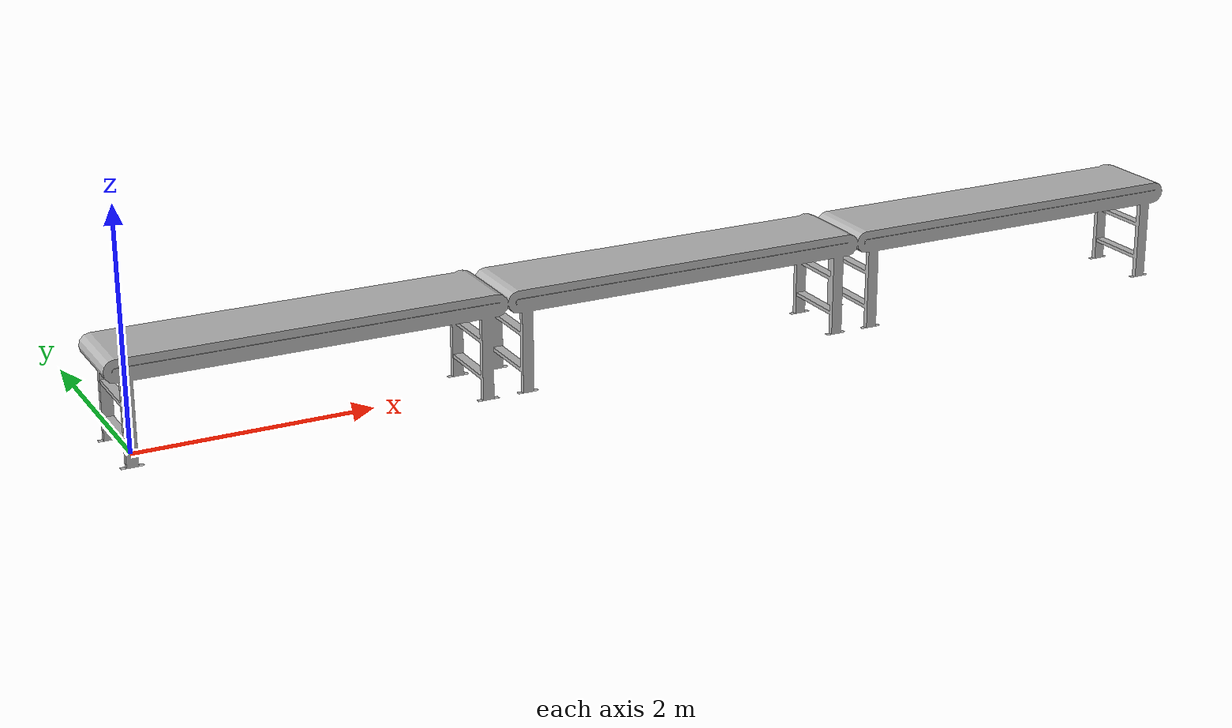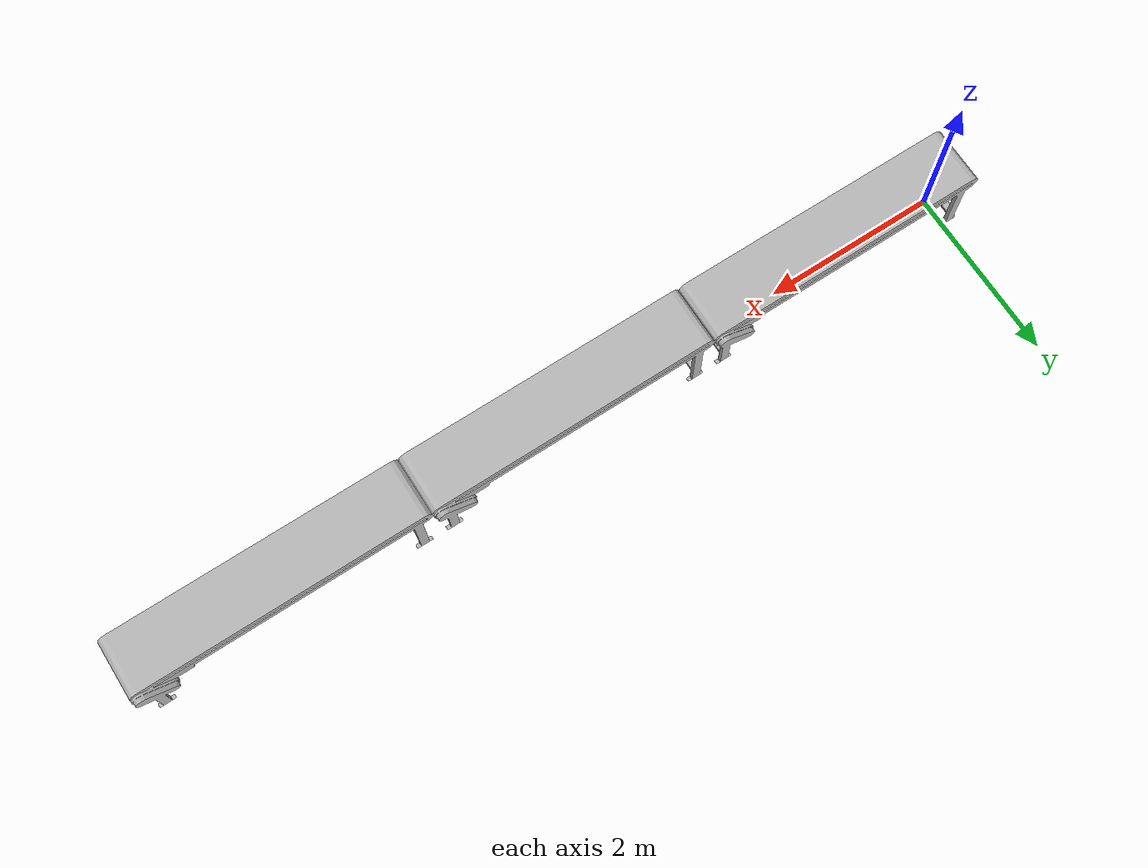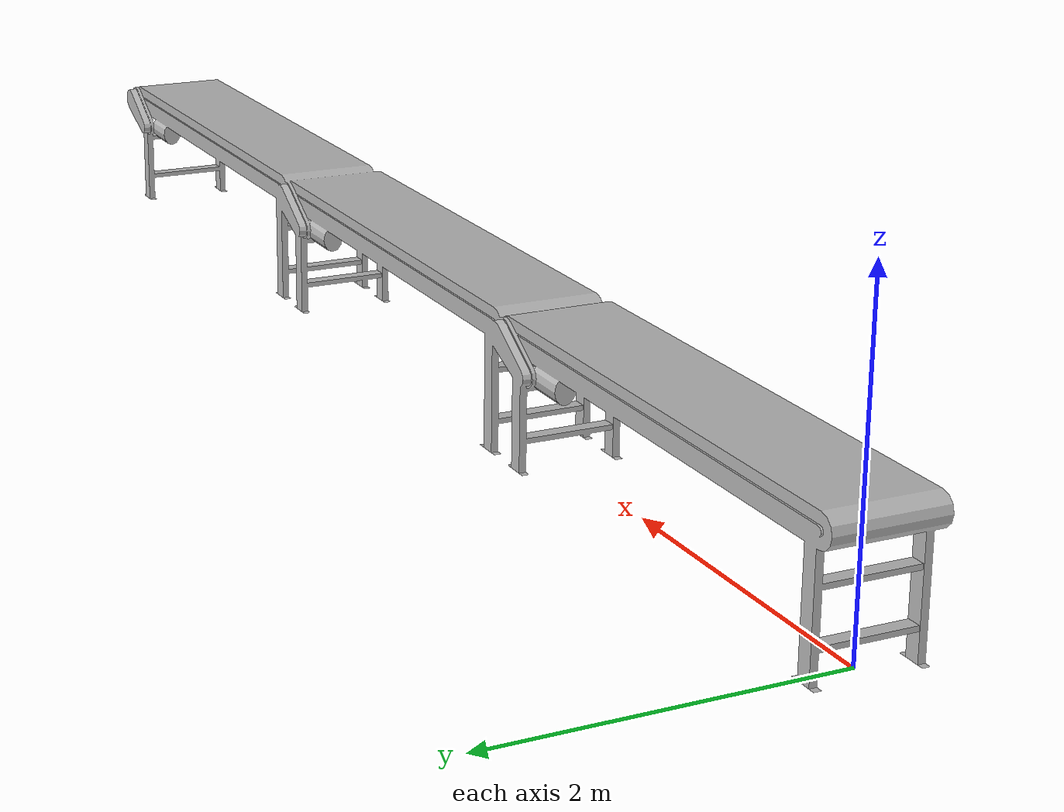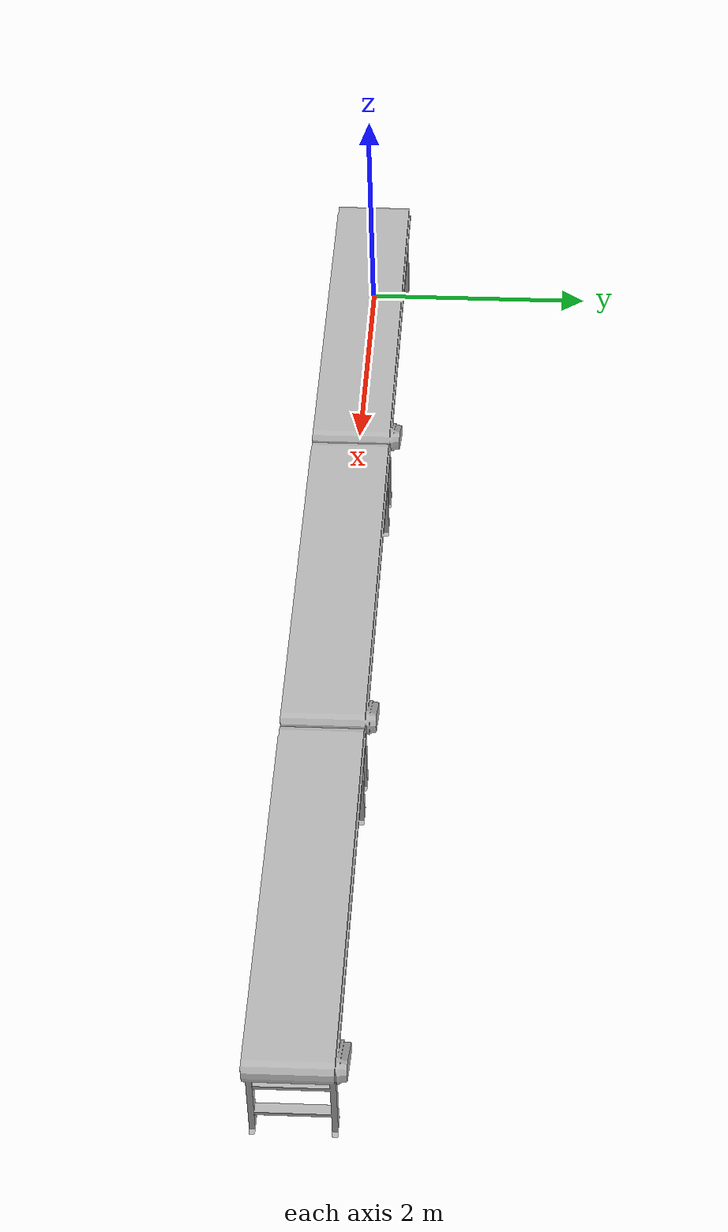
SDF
<?xml version='1.0'?>
<sdf version='1.6'>

    <model name="visual_conveyor_belt">
        <static>true</static>
        <link name="link">
          <visual name='visual_1'>
              <geometry>
              <mesh>
                <uri>model://conveyor_belt/meshes/conveyorbelt_3u.dae</uri>
                <scale>1 1 1</scale>
              </mesh>
            </geometry>
            <cast_shadows>1</cast_shadows>
            <transparency>0.0</transparency>
          </visual>
        </link>
    </model>

</sdf>
